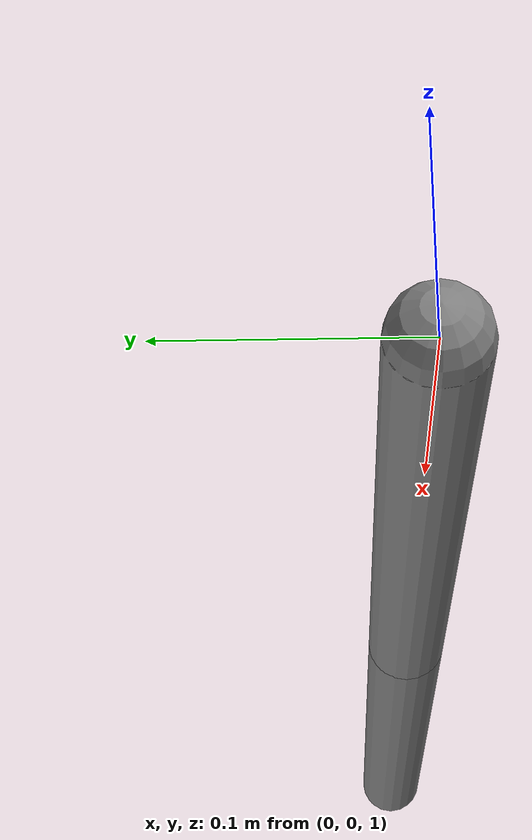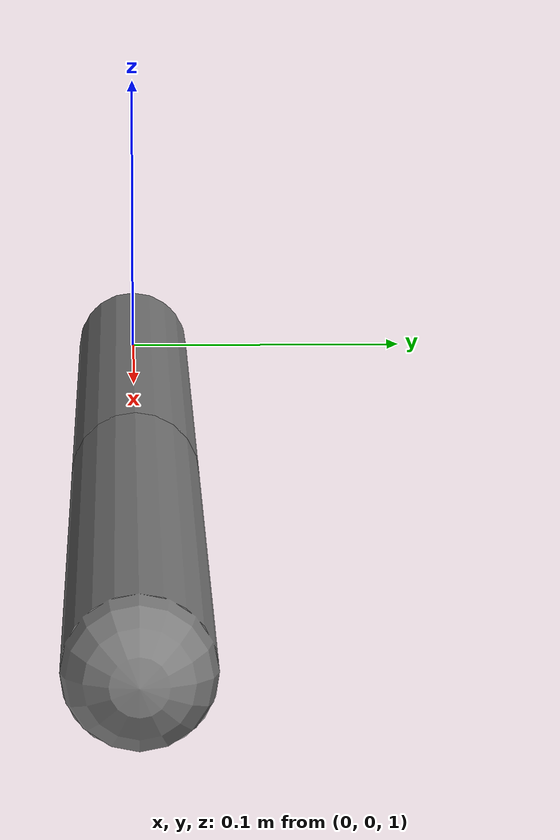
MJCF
<!-- BROKEN (debugging clinic, case 2): the arm flies apart within a fraction of a second. -->
<mujoco model="explode">
  <compiler angle="radian" autolimits="true"/>
  <option timestep="0.01"/>
  <worldbody>
    <light pos="0 -1 2" dir="0 0.5 -1"/>
    <body name="link1" pos="0 0 1">
      <joint name="j1" type="hinge" axis="0 1 0" stiffness="2000"/>
      <geom type="capsule" fromto="0 0 0 0.3 0 0" size="0.02" mass="0.05"/>
      <body name="link2" pos="0.3 0 0">
        <joint name="j2" type="hinge" axis="0 1 0" stiffness="2000"/>
        <geom type="capsule" fromto="0 0 0 0.3 0 0" size="0.02" mass="0.05"/>
      </body>
    </body>
  </worldbody>
  <keyframe><key qpos="0.3 -0.3"/></keyframe>
</mujoco>
